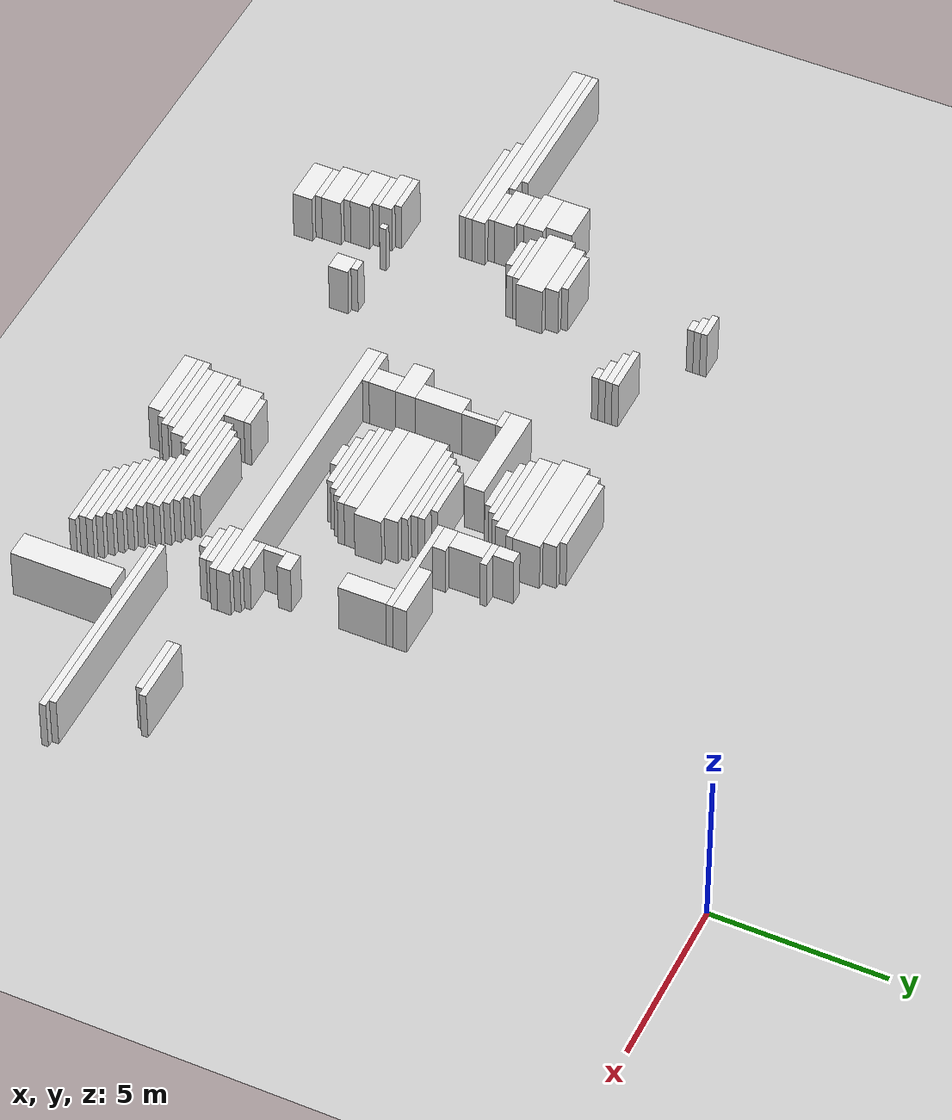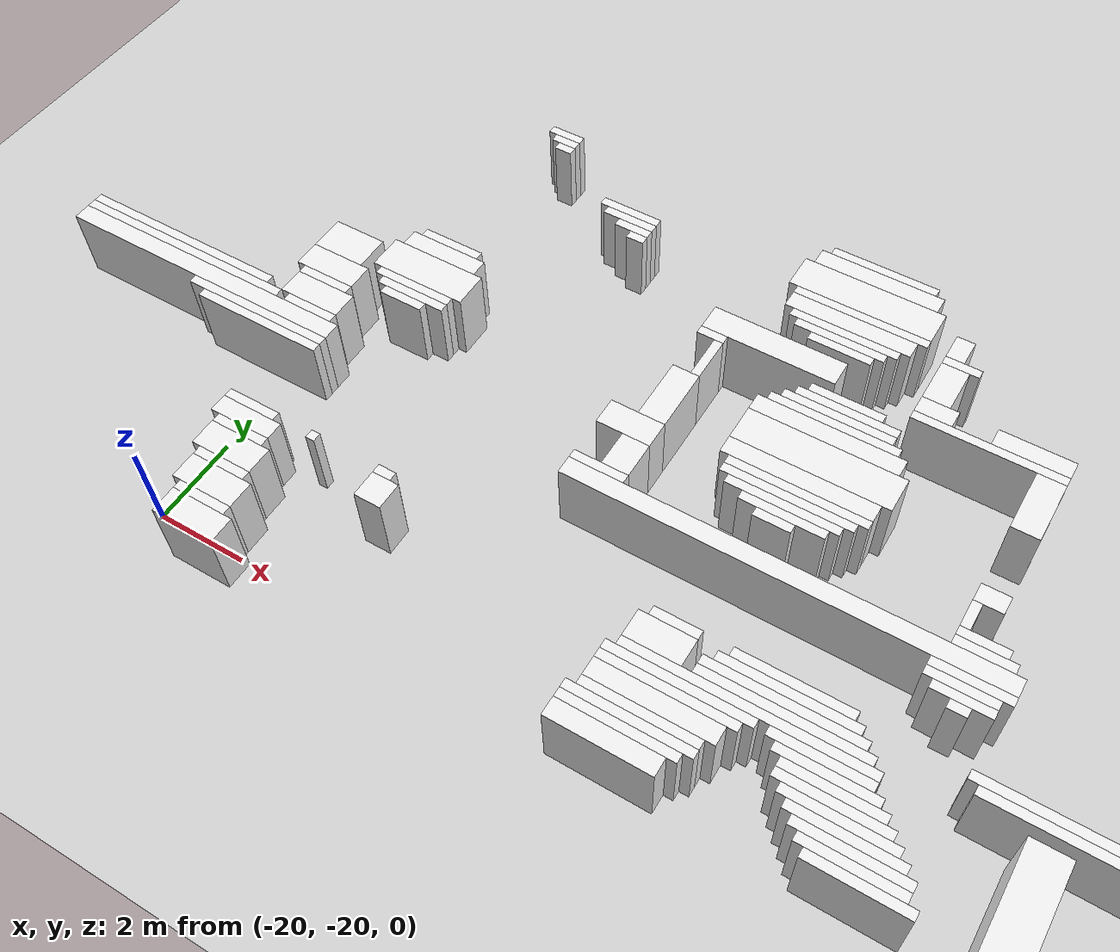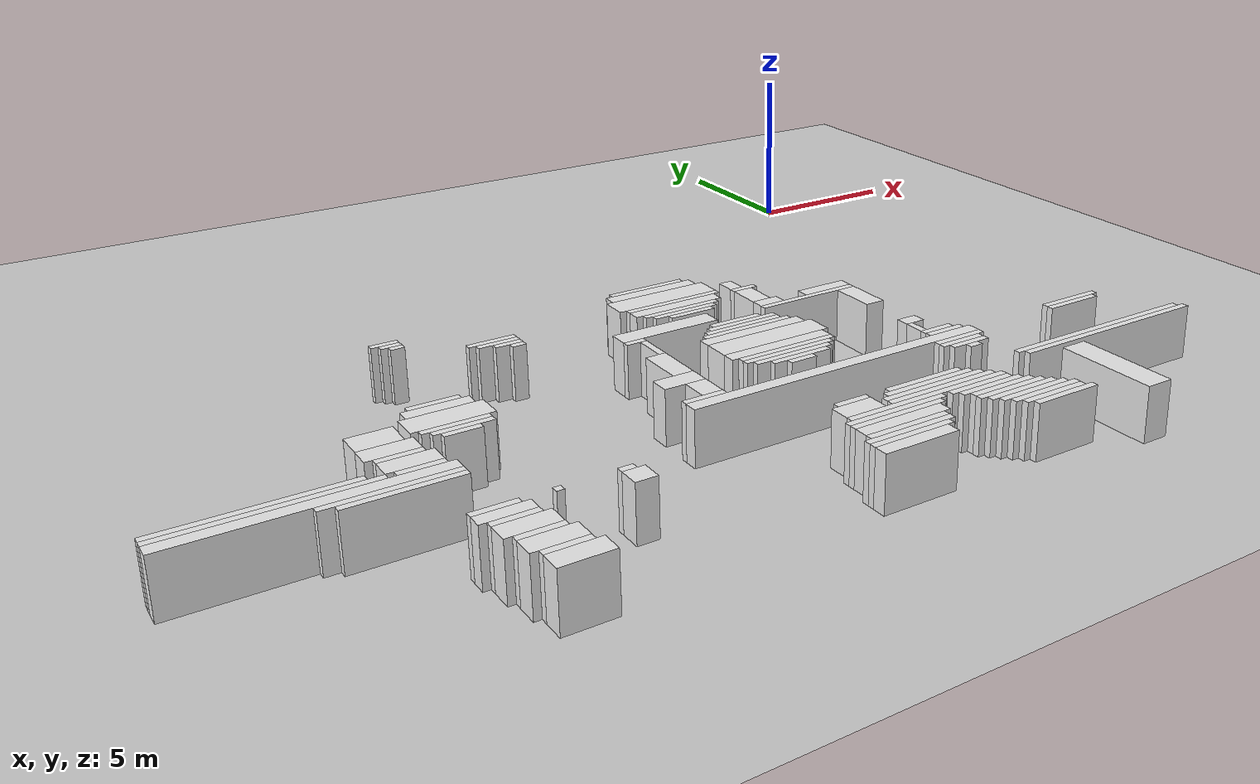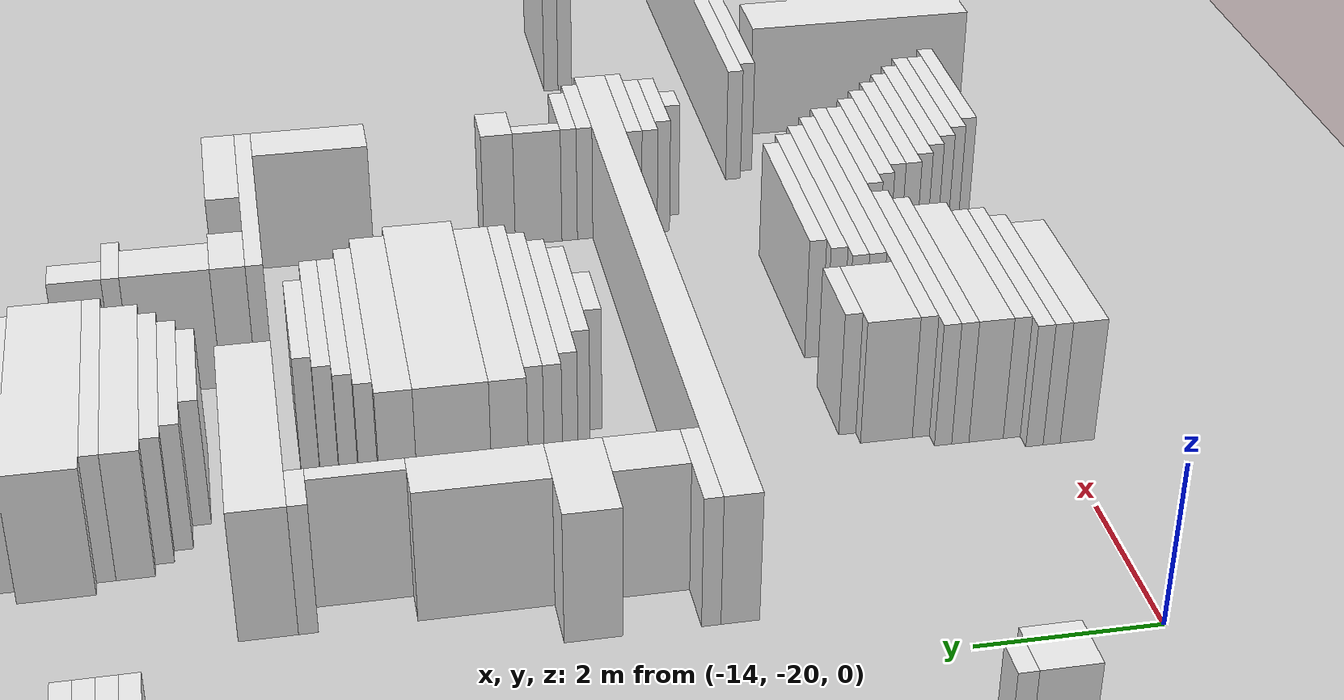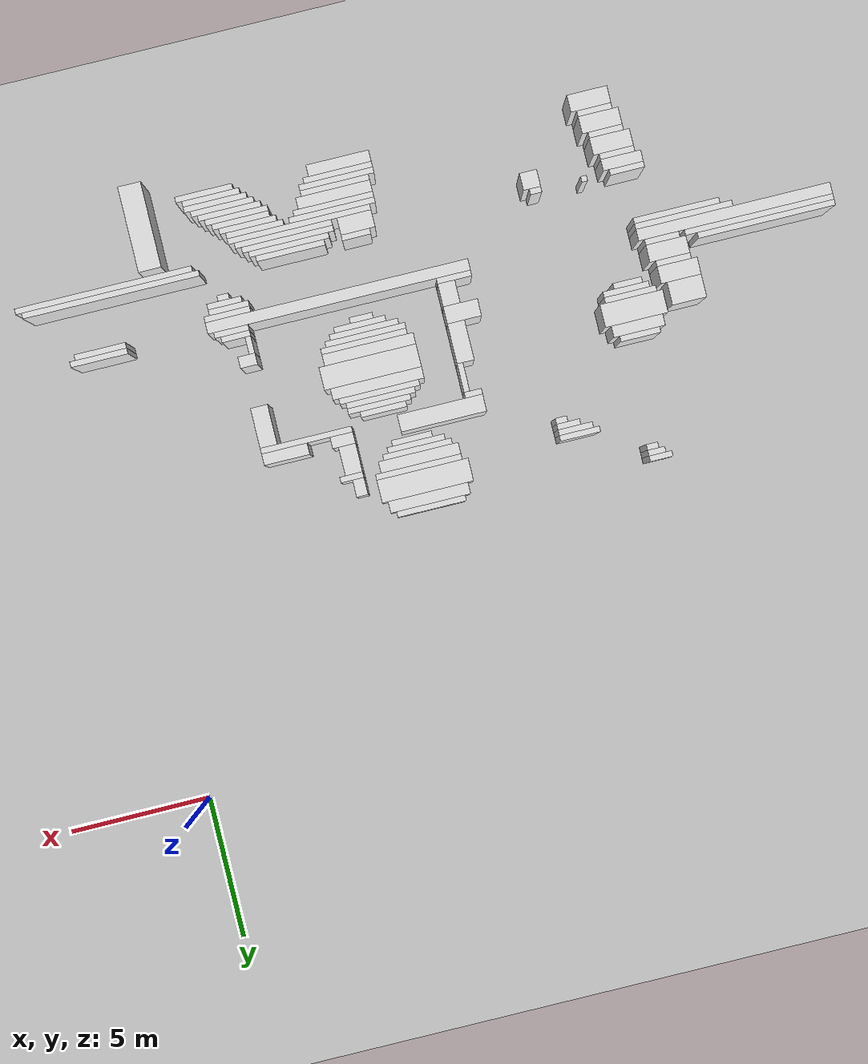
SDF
<sdf version="1.7">
 <world name="default">
  <model name="ground_plane">
   <static>1</static>
   <link name="link">
    <collision name="collision">
     <geometry><plane><normal>0 0 1</normal><size>120 120</size></plane></geometry>
    </collision>
    <visual name="visual">
     <geometry><plane><normal>0 0 1</normal><size>120 120</size></plane></geometry>
     <material>
      <script><uri>file://media/materials/scripts/gazebo.material</uri><name>Gazebo/Grey</name></script>
     </material>
    </visual>
   </link>
  </model>
  <model name="random_complex_02_model">
   <static>1</static>
   <link name="obs_2290">
    <pose>-18.0000 -7.9000 0.8000 0 0 0</pose>
    <collision name="obs_2290_col"><geometry><box><size>0.8000 0.2000 1.6000</size></box></geometry></collision>
    <visual name="obs_2290_vis">
     <geometry><box><size>0.8000 0.2000 1.6000</size></box></geometry>
     <material>
      <script><uri>file://media/materials/scripts/gazebo.material</uri><name>Gazebo/White</name></script>
     </material>
    </visual>
   </link>
   <link name="obs_2299">
    <pose>-17.9000 -8.1000 0.8000 0 0 0</pose>
    <collision name="obs_2299_col"><geometry><box><size>0.6000 0.2000 1.6000</size></box></geometry></collision>
    <visual name="obs_2299_vis">
     <geometry><box><size>0.6000 0.2000 1.6000</size></box></geometry>
     <material>
      <script><uri>file://media/materials/scripts/gazebo.material</uri><name>Gazebo/White</name></script>
     </material>
    </visual>
   </link>
   <link name="obs_2300">
    <pose>-10.0000 -8.1000 0.8000 0 0 0</pose>
    <collision name="obs_2300_col"><geometry><box><size>2.4000 0.2000 1.6000</size></box></geometry></collision>
    <visual name="obs_2300_vis">
     <geometry><box><size>2.4000 0.2000 1.6000</size></box></geometry>
     <material>
      <script><uri>file://media/materials/scripts/gazebo.material</uri><name>Gazebo/White</name></script>
     </material>
    </visual>
   </link>
   <link name="obs_2306">
    <pose>-17.8000 -8.3000 0.8000 0 0 0</pose>
    <collision name="obs_2306_col"><geometry><box><size>0.4000 0.2000 1.6000</size></box></geometry></collision>
    <visual name="obs_2306_vis">
     <geometry><box><size>0.4000 0.2000 1.6000</size></box></geometry>
     <material>
      <script><uri>file://media/materials/scripts/gazebo.material</uri><name>Gazebo/White</name></script>
     </material>
    </visual>
   </link>
   <link name="obs_2310">
    <pose>-10.0000 -8.4000 0.8000 0 0 0</pose>
    <collision name="obs_2310_col"><geometry><box><size>2.8000 0.4000 1.6000</size></box></geometry></collision>
    <visual name="obs_2310_vis">
     <geometry><box><size>2.8000 0.4000 1.6000</size></box></geometry>
     <material>
      <script><uri>file://media/materials/scripts/gazebo.material</uri><name>Gazebo/White</name></script>
     </material>
    </visual>
   </link>
   <link name="obs_2330">
    <pose>-10.0000 -9.0000 0.8000 0 0 0</pose>
    <collision name="obs_2330_col"><geometry><box><size>3.2000 0.8000 1.6000</size></box></geometry></collision>
    <visual name="obs_2330_vis">
     <geometry><box><size>3.2000 0.8000 1.6000</size></box></geometry>
     <material>
      <script><uri>file://media/materials/scripts/gazebo.material</uri><name>Gazebo/White</name></script>
     </material>
    </visual>
   </link>
   <link name="obs_2336">
    <pose>-15.5000 -9.3000 0.8000 0 0 0</pose>
    <collision name="obs_2336_col"><geometry><box><size>1.4000 0.2000 1.6000</size></box></geometry></collision>
    <visual name="obs_2336_vis">
     <geometry><box><size>1.4000 0.2000 1.6000</size></box></geometry>
     <material>
      <script><uri>file://media/materials/scripts/gazebo.material</uri><name>Gazebo/White</name></script>
     </material>
    </visual>
   </link>
   <link name="obs_2337">
    <pose>-7.8000 -9.3000 0.8000 0 0 0</pose>
    <collision name="obs_2337_col"><geometry><box><size>0.4000 0.6000 1.6000</size></box></geometry></collision>
    <visual name="obs_2337_vis">
     <geometry><box><size>0.4000 0.6000 1.6000</size></box></geometry>
     <material>
      <script><uri>file://media/materials/scripts/gazebo.material</uri><name>Gazebo/White</name></script>
     </material>
    </visual>
   </link>
   <link name="obs_2340">
    <pose>-15.4000 -9.5000 0.8000 0 0 0</pose>
    <collision name="obs_2340_col"><geometry><box><size>1.2000 0.2000 1.6000</size></box></geometry></collision>
    <visual name="obs_2340_vis">
     <geometry><box><size>1.2000 0.2000 1.6000</size></box></geometry>
     <material>
      <script><uri>file://media/materials/scripts/gazebo.material</uri><name>Gazebo/White</name></script>
     </material>
    </visual>
   </link>
   <link name="obs_2341">
    <pose>-9.9000 -9.5000 0.8000 0 0 0</pose>
    <collision name="obs_2341_col"><geometry><box><size>3.0000 0.2000 1.6000</size></box></geometry></collision>
    <visual name="obs_2341_vis">
     <geometry><box><size>3.0000 0.2000 1.6000</size></box></geometry>
     <material>
      <script><uri>file://media/materials/scripts/gazebo.material</uri><name>Gazebo/White</name></script>
     </material>
    </visual>
   </link>
   <link name="obs_2346">
    <pose>-15.2000 -9.7000 0.8000 0 0 0</pose>
    <collision name="obs_2346_col"><geometry><box><size>0.8000 0.2000 1.6000</size></box></geometry></collision>
    <visual name="obs_2346_vis">
     <geometry><box><size>0.8000 0.2000 1.6000</size></box></geometry>
     <material>
      <script><uri>file://media/materials/scripts/gazebo.material</uri><name>Gazebo/White</name></script>
     </material>
    </visual>
   </link>
   <link name="obs_2347">
    <pose>-7.6000 -9.7000 0.8000 0 0 0</pose>
    <collision name="obs_2347_col"><geometry><box><size>0.8000 0.2000 1.6000</size></box></geometry></collision>
    <visual name="obs_2347_vis">
     <geometry><box><size>0.8000 0.2000 1.6000</size></box></geometry>
     <material>
      <script><uri>file://media/materials/scripts/gazebo.material</uri><name>Gazebo/White</name></script>
     </material>
    </visual>
   </link>
   <link name="obs_2351">
    <pose>-10.0000 -9.8000 0.8000 0 0 0</pose>
    <collision name="obs_2351_col"><geometry><box><size>2.8000 0.4000 1.6000</size></box></geometry></collision>
    <visual name="obs_2351_vis">
     <geometry><box><size>2.8000 0.4000 1.6000</size></box></geometry>
     <material>
      <script><uri>file://media/materials/scripts/gazebo.material</uri><name>Gazebo/White</name></script>
     </material>
    </visual>
   </link>
   <link name="obs_2353">
    <pose>-15.0000 -9.9000 0.8000 0 0 0</pose>
    <collision name="obs_2353_col"><geometry><box><size>0.4000 0.2000 1.6000</size></box></geometry></collision>
    <visual name="obs_2353_vis">
     <geometry><box><size>0.4000 0.2000 1.6000</size></box></geometry>
     <material>
      <script><uri>file://media/materials/scripts/gazebo.material</uri><name>Gazebo/White</name></script>
     </material>
    </visual>
   </link>
   <link name="obs_2359">
    <pose>-10.0000 -10.1000 0.8000 0 0 0</pose>
    <collision name="obs_2359_col"><geometry><box><size>2.4000 0.2000 1.6000</size></box></geometry></collision>
    <visual name="obs_2359_vis">
     <geometry><box><size>2.4000 0.2000 1.6000</size></box></geometry>
     <material>
      <script><uri>file://media/materials/scripts/gazebo.material</uri><name>Gazebo/White</name></script>
     </material>
    </visual>
   </link>
   <link name="obs_2365">
    <pose>-10.0000 -10.3000 0.8000 0 0 0</pose>
    <collision name="obs_2365_col"><geometry><box><size>2.0000 0.2000 1.6000</size></box></geometry></collision>
    <visual name="obs_2365_vis">
     <geometry><box><size>2.0000 0.2000 1.6000</size></box></geometry>
     <material>
      <script><uri>file://media/materials/scripts/gazebo.material</uri><name>Gazebo/White</name></script>
     </material>
    </visual>
   </link>
   <link name="obs_2372">
    <pose>-9.9000 -10.5000 0.8000 0 0 0</pose>
    <collision name="obs_2372_col"><geometry><box><size>1.4000 0.2000 1.6000</size></box></geometry></collision>
    <visual name="obs_2372_vis">
     <geometry><box><size>1.4000 0.2000 1.6000</size></box></geometry>
     <material>
      <script><uri>file://media/materials/scripts/gazebo.material</uri><name>Gazebo/White</name></script>
     </material>
    </visual>
   </link>
   <link name="obs_2377">
    <pose>-7.7000 -10.3000 0.8000 0 0 0</pose>
    <collision name="obs_2377_col"><geometry><box><size>0.6000 1.0000 1.6000</size></box></geometry></collision>
    <visual name="obs_2377_vis">
     <geometry><box><size>0.6000 1.0000 1.6000</size></box></geometry>
     <material>
      <script><uri>file://media/materials/scripts/gazebo.material</uri><name>Gazebo/White</name></script>
     </material>
    </visual>
   </link>
   <link name="obs_2387">
    <pose>-7.6000 -11.0000 0.8000 0 0 0</pose>
    <collision name="obs_2387_col"><geometry><box><size>0.8000 0.4000 1.6000</size></box></geometry></collision>
    <visual name="obs_2387_vis">
     <geometry><box><size>0.8000 0.4000 1.6000</size></box></geometry>
     <material>
      <script><uri>file://media/materials/scripts/gazebo.material</uri><name>Gazebo/White</name></script>
     </material>
    </visual>
   </link>
   <link name="obs_2388">
    <pose>-5.6000 -11.0000 0.8000 0 0 0</pose>
    <collision name="obs_2388_col"><geometry><box><size>1.6000 0.4000 1.6000</size></box></geometry></collision>
    <visual name="obs_2388_vis">
     <geometry><box><size>1.6000 0.4000 1.6000</size></box></geometry>
     <material>
      <script><uri>file://media/materials/scripts/gazebo.material</uri><name>Gazebo/White</name></script>
     </material>
    </visual>
   </link>
   <link name="obs_2392">
    <pose>-11.1000 -11.1000 0.8000 0 0 0</pose>
    <collision name="obs_2392_col"><geometry><box><size>3.0000 0.6000 1.6000</size></box></geometry></collision>
    <visual name="obs_2392_vis">
     <geometry><box><size>3.0000 0.6000 1.6000</size></box></geometry>
     <material>
      <script><uri>file://media/materials/scripts/gazebo.material</uri><name>Gazebo/White</name></script>
     </material>
    </visual>
   </link>
   <link name="obs_2395">
    <pose>-6.4000 -11.3000 0.8000 0 0 0</pose>
    <collision name="obs_2395_col"><geometry><box><size>3.2000 0.2000 1.6000</size></box></geometry></collision>
    <visual name="obs_2395_vis">
     <geometry><box><size>3.2000 0.2000 1.6000</size></box></geometry>
     <material>
      <script><uri>file://media/materials/scripts/gazebo.material</uri><name>Gazebo/White</name></script>
     </material>
    </visual>
   </link>
   <link name="obs_2402">
    <pose>-12.3000 -11.5000 0.8000 0 0 0</pose>
    <collision name="obs_2402_col"><geometry><box><size>0.6000 0.2000 1.6000</size></box></geometry></collision>
    <visual name="obs_2402_vis">
     <geometry><box><size>0.6000 0.2000 1.6000</size></box></geometry>
     <material>
      <script><uri>file://media/materials/scripts/gazebo.material</uri><name>Gazebo/White</name></script>
     </material>
    </visual>
   </link>
   <link name="obs_2409">
    <pose>-9.2000 -11.7000 0.8000 0 0 0</pose>
    <collision name="obs_2409_col"><geometry><box><size>1.6000 0.2000 1.6000</size></box></geometry></collision>
    <visual name="obs_2409_vis">
     <geometry><box><size>1.6000 0.2000 1.6000</size></box></geometry>
     <material>
      <script><uri>file://media/materials/scripts/gazebo.material</uri><name>Gazebo/White</name></script>
     </material>
    </visual>
   </link>
   <link name="obs_2417">
    <pose>-9.1000 -11.9000 0.8000 0 0 0</pose>
    <collision name="obs_2417_col"><geometry><box><size>2.2000 0.2000 1.6000</size></box></geometry></collision>
    <visual name="obs_2417_vis">
     <geometry><box><size>2.2000 0.2000 1.6000</size></box></geometry>
     <material>
      <script><uri>file://media/materials/scripts/gazebo.material</uri><name>Gazebo/White</name></script>
     </material>
    </visual>
   </link>
   <link name="obs_2425">
    <pose>-18.3000 -12.1000 0.8000 0 0 0</pose>
    <collision name="obs_2425_col"><geometry><box><size>1.4000 0.2000 1.6000</size></box></geometry></collision>
    <visual name="obs_2425_vis">
     <geometry><box><size>1.4000 0.2000 1.6000</size></box></geometry>
     <material>
      <script><uri>file://media/materials/scripts/gazebo.material</uri><name>Gazebo/White</name></script>
     </material>
    </visual>
   </link>
   <link name="obs_2426">
    <pose>-9.2000 -12.1000 0.8000 0 0 0</pose>
    <collision name="obs_2426_col"><geometry><box><size>2.4000 0.2000 1.6000</size></box></geometry></collision>
    <visual name="obs_2426_vis">
     <geometry><box><size>2.4000 0.2000 1.6000</size></box></geometry>
     <material>
      <script><uri>file://media/materials/scripts/gazebo.material</uri><name>Gazebo/White</name></script>
     </material>
    </visual>
   </link>
   <link name="obs_2434">
    <pose>-9.2000 -12.3000 0.8000 0 0 0</pose>
    <collision name="obs_2434_col"><geometry><box><size>2.8000 0.2000 1.6000</size></box></geometry></collision>
    <visual name="obs_2434_vis">
     <geometry><box><size>2.8000 0.2000 1.6000</size></box></geometry>
     <material>
      <script><uri>file://media/materials/scripts/gazebo.material</uri><name>Gazebo/White</name></script>
     </material>
    </visual>
   </link>
   <link name="obs_2440">
    <pose>-12.1000 -12.1000 0.8000 0 0 0</pose>
    <collision name="obs_2440_col"><geometry><box><size>0.2000 1.0000 1.6000</size></box></geometry></collision>
    <visual name="obs_2440_vis">
     <geometry><box><size>0.2000 1.0000 1.6000</size></box></geometry>
     <material>
      <script><uri>file://media/materials/scripts/gazebo.material</uri><name>Gazebo/White</name></script>
     </material>
    </visual>
   </link>
   <link name="obs_2441">
    <pose>-18.3000 -12.4000 0.8000 0 0 0</pose>
    <collision name="obs_2441_col"><geometry><box><size>1.8000 0.4000 1.6000</size></box></geometry></collision>
    <visual name="obs_2441_vis">
     <geometry><box><size>1.8000 0.4000 1.6000</size></box></geometry>
     <material>
      <script><uri>file://media/materials/scripts/gazebo.material</uri><name>Gazebo/White</name></script>
     </material>
    </visual>
   </link>
   <link name="obs_2449">
    <pose>-5.1000 -12.1000 0.8000 0 0 0</pose>
    <collision name="obs_2449_col"><geometry><box><size>0.6000 1.4000 1.6000</size></box></geometry></collision>
    <visual name="obs_2449_vis">
     <geometry><box><size>0.6000 1.4000 1.6000</size></box></geometry>
     <material>
      <script><uri>file://media/materials/scripts/gazebo.material</uri><name>Gazebo/White</name></script>
     </material>
    </visual>
   </link>
   <link name="obs_2452">
    <pose>-9.2000 -12.6000 0.8000 0 0 0</pose>
    <collision name="obs_2452_col"><geometry><box><size>3.2000 0.4000 1.6000</size></box></geometry></collision>
    <visual name="obs_2452_vis">
     <geometry><box><size>3.2000 0.4000 1.6000</size></box></geometry>
     <material>
      <script><uri>file://media/materials/scripts/gazebo.material</uri><name>Gazebo/White</name></script>
     </material>
    </visual>
   </link>
   <link name="obs_2471">
    <pose>-18.3000 -13.0000 0.8000 0 0 0</pose>
    <collision name="obs_2471_col"><geometry><box><size>2.2000 0.8000 1.6000</size></box></geometry></collision>
    <visual name="obs_2471_vis">
     <geometry><box><size>2.2000 0.8000 1.6000</size></box></geometry>
     <material>
      <script><uri>file://media/materials/scripts/gazebo.material</uri><name>Gazebo/White</name></script>
     </material>
    </visual>
   </link>
   <link name="obs_2477">
    <pose>-20.2000 -13.2000 0.8000 0 0 0</pose>
    <collision name="obs_2477_col"><geometry><box><size>1.2000 0.8000 1.6000</size></box></geometry></collision>
    <visual name="obs_2477_vis">
     <geometry><box><size>1.2000 0.8000 1.6000</size></box></geometry>
     <material>
      <script><uri>file://media/materials/scripts/gazebo.material</uri><name>Gazebo/White</name></script>
     </material>
    </visual>
   </link>
   <link name="obs_2478">
    <pose>-9.1000 -13.2000 0.8000 0 0 0</pose>
    <collision name="obs_2478_col"><geometry><box><size>3.4000 0.8000 1.6000</size></box></geometry></collision>
    <visual name="obs_2478_vis">
     <geometry><box><size>3.4000 0.8000 1.6000</size></box></geometry>
     <material>
      <script><uri>file://media/materials/scripts/gazebo.material</uri><name>Gazebo/White</name></script>
     </material>
    </visual>
   </link>
   <link name="obs_2482">
    <pose>-18.3000 -13.5000 0.8000 0 0 0</pose>
    <collision name="obs_2482_col"><geometry><box><size>1.8000 0.2000 1.6000</size></box></geometry></collision>
    <visual name="obs_2482_vis">
     <geometry><box><size>1.8000 0.2000 1.6000</size></box></geometry>
     <material>
      <script><uri>file://media/materials/scripts/gazebo.material</uri><name>Gazebo/White</name></script>
     </material>
    </visual>
   </link>
   <link name="obs_2489">
    <pose>-18.2000 -13.7000 0.8000 0 0 0</pose>
    <collision name="obs_2489_col"><geometry><box><size>1.6000 0.2000 1.6000</size></box></geometry></collision>
    <visual name="obs_2489_vis">
     <geometry><box><size>1.6000 0.2000 1.6000</size></box></geometry>
     <material>
      <script><uri>file://media/materials/scripts/gazebo.material</uri><name>Gazebo/White</name></script>
     </material>
    </visual>
   </link>
   <link name="obs_2492">
    <pose>-12.3000 -13.3000 0.8000 0 0 0</pose>
    <collision name="obs_2492_col"><geometry><box><size>0.6000 1.4000 1.6000</size></box></geometry></collision>
    <visual name="obs_2492_vis">
     <geometry><box><size>0.6000 1.4000 1.6000</size></box></geometry>
     <material>
      <script><uri>file://media/materials/scripts/gazebo.material</uri><name>Gazebo/White</name></script>
     </material>
    </visual>
   </link>
   <link name="obs_2493">
    <pose>-9.2000 -13.8000 0.8000 0 0 0</pose>
    <collision name="obs_2493_col"><geometry><box><size>3.2000 0.4000 1.6000</size></box></geometry></collision>
    <visual name="obs_2493_vis">
     <geometry><box><size>3.2000 0.4000 1.6000</size></box></geometry>
     <material>
      <script><uri>file://media/materials/scripts/gazebo.material</uri><name>Gazebo/White</name></script>
     </material>
    </visual>
   </link>
   <link name="obs_2497">
    <pose>-18.3000 -13.9000 0.8000 0 0 0</pose>
    <collision name="obs_2497_col"><geometry><box><size>1.0000 0.2000 1.6000</size></box></geometry></collision>
    <visual name="obs_2497_vis">
     <geometry><box><size>1.0000 0.2000 1.6000</size></box></geometry>
     <material>
      <script><uri>file://media/materials/scripts/gazebo.material</uri><name>Gazebo/White</name></script>
     </material>
    </visual>
   </link>
   <link name="obs_2501">
    <pose>-20.1000 -13.9000 0.8000 0 0 0</pose>
    <collision name="obs_2501_col"><geometry><box><size>1.4000 0.6000 1.6000</size></box></geometry></collision>
    <visual name="obs_2501_vis">
     <geometry><box><size>1.4000 0.6000 1.6000</size></box></geometry>
     <material>
      <script><uri>file://media/materials/scripts/gazebo.material</uri><name>Gazebo/White</name></script>
     </material>
    </visual>
   </link>
   <link name="obs_2505">
    <pose>-9.1000 -14.1000 0.8000 0 0 0</pose>
    <collision name="obs_2505_col"><geometry><box><size>3.0000 0.2000 1.6000</size></box></geometry></collision>
    <visual name="obs_2505_vis">
     <geometry><box><size>3.0000 0.2000 1.6000</size></box></geometry>
     <material>
      <script><uri>file://media/materials/scripts/gazebo.material</uri><name>Gazebo/White</name></script>
     </material>
    </visual>
   </link>
   <link name="obs_2513">
    <pose>-20.0000 -14.3000 0.8000 0 0 0</pose>
    <collision name="obs_2513_col"><geometry><box><size>1.2000 0.2000 1.6000</size></box></geometry></collision>
    <visual name="obs_2513_vis">
     <geometry><box><size>1.2000 0.2000 1.6000</size></box></geometry>
     <material>
      <script><uri>file://media/materials/scripts/gazebo.material</uri><name>Gazebo/White</name></script>
     </material>
    </visual>
   </link>
   <link name="obs_2514">
    <pose>-9.2000 -14.3000 0.8000 0 0 0</pose>
    <collision name="obs_2514_col"><geometry><box><size>2.8000 0.2000 1.6000</size></box></geometry></collision>
    <visual name="obs_2514_vis">
     <geometry><box><size>2.8000 0.2000 1.6000</size></box></geometry>
     <material>
      <script><uri>file://media/materials/scripts/gazebo.material</uri><name>Gazebo/White</name></script>
     </material>
    </visual>
   </link>
   <link name="obs_2520">
    <pose>-12.6000 -14.3000 0.8000 0 0 0</pose>
    <collision name="obs_2520_col"><geometry><box><size>1.2000 0.6000 1.6000</size></box></geometry></collision>
    <visual name="obs_2520_vis">
     <geometry><box><size>1.2000 0.6000 1.6000</size></box></geometry>
     <material>
      <script><uri>file://media/materials/scripts/gazebo.material</uri><name>Gazebo/White</name></script>
     </material>
    </visual>
   </link>
   <link name="obs_2521">
    <pose>-5.1000 -14.4000 0.8000 0 0 0</pose>
    <collision name="obs_2521_col"><geometry><box><size>0.6000 0.4000 1.6000</size></box></geometry></collision>
    <visual name="obs_2521_vis">
     <geometry><box><size>0.6000 0.4000 1.6000</size></box></geometry>
     <material>
      <script><uri>file://media/materials/scripts/gazebo.material</uri><name>Gazebo/White</name></script>
     </material>
    </visual>
   </link>
   <link name="obs_2525">
    <pose>-9.2000 -14.5000 0.8000 0 0 0</pose>
    <collision name="obs_2525_col"><geometry><box><size>2.4000 0.2000 1.6000</size></box></geometry></collision>
    <visual name="obs_2525_vis">
     <geometry><box><size>2.4000 0.2000 1.6000</size></box></geometry>
     <material>
      <script><uri>file://media/materials/scripts/gazebo.material</uri><name>Gazebo/White</name></script>
     </material>
    </visual>
   </link>
   <link name="obs_2533">
    <pose>-9.1000 -14.7000 0.8000 0 0 0</pose>
    <collision name="obs_2533_col"><geometry><box><size>1.8000 0.2000 1.6000</size></box></geometry></collision>
    <visual name="obs_2533_vis">
     <geometry><box><size>1.8000 0.2000 1.6000</size></box></geometry>
     <material>
      <script><uri>file://media/materials/scripts/gazebo.material</uri><name>Gazebo/White</name></script>
     </material>
    </visual>
   </link>
   <link name="obs_2540">
    <pose>-19.9000 -14.7000 0.8000 0 0 0</pose>
    <collision name="obs_2540_col"><geometry><box><size>1.4000 0.6000 1.6000</size></box></geometry></collision>
    <visual name="obs_2540_vis">
     <geometry><box><size>1.4000 0.6000 1.6000</size></box></geometry>
     <material>
      <script><uri>file://media/materials/scripts/gazebo.material</uri><name>Gazebo/White</name></script>
     </material>
    </visual>
   </link>
   <link name="obs_2543">
    <pose>-23.4000 -14.9000 0.8000 0 0 0</pose>
    <collision name="obs_2543_col"><geometry><box><size>4.8000 0.2000 1.6000</size></box></geometry></collision>
    <visual name="obs_2543_vis">
     <geometry><box><size>4.8000 0.2000 1.6000</size></box></geometry>
     <material>
      <script><uri>file://media/materials/scripts/gazebo.material</uri><name>Gazebo/White</name></script>
     </material>
    </visual>
   </link>
   <link name="obs_2544">
    <pose>-9.2000 -14.9000 0.8000 0 0 0</pose>
    <collision name="obs_2544_col"><geometry><box><size>0.8000 0.2000 1.6000</size></box></geometry></collision>
    <visual name="obs_2544_vis">
     <geometry><box><size>0.8000 0.2000 1.6000</size></box></geometry>
     <material>
      <script><uri>file://media/materials/scripts/gazebo.material</uri><name>Gazebo/White</name></script>
     </material>
    </visual>
   </link>
   <link name="obs_2550">
    <pose>-5.3000 -14.9000 0.8000 0 0 0</pose>
    <collision name="obs_2550_col"><geometry><box><size>0.2000 0.6000 1.6000</size></box></geometry></collision>
    <visual name="obs_2550_vis">
     <geometry><box><size>0.2000 0.6000 1.6000</size></box></geometry>
     <material>
      <script><uri>file://media/materials/scripts/gazebo.material</uri><name>Gazebo/White</name></script>
     </material>
    </visual>
   </link>
   <link name="obs_2553">
    <pose>-23.2000 -15.1000 0.8000 0 0 0</pose>
    <collision name="obs_2553_col"><geometry><box><size>5.2000 0.2000 1.6000</size></box></geometry></collision>
    <visual name="obs_2553_vis">
     <geometry><box><size>5.2000 0.2000 1.6000</size></box></geometry>
     <material>
      <script><uri>file://media/materials/scripts/gazebo.material</uri><name>Gazebo/White</name></script>
     </material>
    </visual>
   </link>
   <link name="obs_2554">
    <pose>-19.8000 -15.1000 0.8000 0 0 0</pose>
    <collision name="obs_2554_col"><geometry><box><size>1.2000 0.2000 1.6000</size></box></geometry></collision>
    <visual name="obs_2554_vis">
     <geometry><box><size>1.2000 0.2000 1.6000</size></box></geometry>
     <material>
      <script><uri>file://media/materials/scripts/gazebo.material</uri><name>Gazebo/White</name></script>
     </material>
    </visual>
   </link>
   <link name="obs_2560">
    <pose>-12.3000 -15.0000 0.8000 0 0 0</pose>
    <collision name="obs_2560_col"><geometry><box><size>0.6000 0.8000 1.6000</size></box></geometry></collision>
    <visual name="obs_2560_vis">
     <geometry><box><size>0.6000 0.8000 1.6000</size></box></geometry>
     <material>
      <script><uri>file://media/materials/scripts/gazebo.material</uri><name>Gazebo/White</name></script>
     </material>
    </visual>
   </link>
   <link name="obs_2564">
    <pose>-4.9000 -15.3000 0.8000 0 0 0</pose>
    <collision name="obs_2564_col"><geometry><box><size>1.0000 0.2000 1.6000</size></box></geometry></collision>
    <visual name="obs_2564_vis">
     <geometry><box><size>1.0000 0.2000 1.6000</size></box></geometry>
     <material>
      <script><uri>file://media/materials/scripts/gazebo.material</uri><name>Gazebo/White</name></script>
     </material>
    </visual>
   </link>
   <link name="obs_2570">
    <pose>-22.4000 -15.4000 0.8000 0 0 0</pose>
    <collision name="obs_2570_col"><geometry><box><size>6.8000 0.4000 1.6000</size></box></geometry></collision>
    <visual name="obs_2570_vis">
     <geometry><box><size>6.8000 0.4000 1.6000</size></box></geometry>
     <material>
      <script><uri>file://media/materials/scripts/gazebo.material</uri><name>Gazebo/White</name></script>
     </material>
    </visual>
   </link>
   <link name="obs_2574">
    <pose>-12.6000 -15.5000 0.8000 0 0 0</pose>
    <collision name="obs_2574_col"><geometry><box><size>1.2000 0.2000 1.6000</size></box></geometry></collision>
    <visual name="obs_2574_vis">
     <geometry><box><size>1.2000 0.2000 1.6000</size></box></geometry>
     <material>
      <script><uri>file://media/materials/scripts/gazebo.material</uri><name>Gazebo/White</name></script>
     </material>
    </visual>
   </link>
   <link name="obs_2575">
    <pose>-4.8000 -15.5000 0.8000 0 0 0</pose>
    <collision name="obs_2575_col"><geometry><box><size>1.2000 0.2000 1.6000</size></box></geometry></collision>
    <visual name="obs_2575_vis">
     <geometry><box><size>1.2000 0.2000 1.6000</size></box></geometry>
     <material>
      <script><uri>file://media/materials/scripts/gazebo.material</uri><name>Gazebo/White</name></script>
     </material>
    </visual>
   </link>
   <link name="obs_2587">
    <pose>-20.7000 -15.7000 0.8000 0 0 0</pose>
    <collision name="obs_2587_col"><geometry><box><size>3.4000 0.2000 1.6000</size></box></geometry></collision>
    <visual name="obs_2587_vis">
     <geometry><box><size>3.4000 0.2000 1.6000</size></box></geometry>
     <material>
      <script><uri>file://media/materials/scripts/gazebo.material</uri><name>Gazebo/White</name></script>
     </material>
    </visual>
   </link>
   <link name="obs_2588">
    <pose>-0.2000 -15.7000 0.8000 0 0 0</pose>
    <collision name="obs_2588_col"><geometry><box><size>2.0000 0.2000 1.6000</size></box></geometry></collision>
    <visual name="obs_2588_vis">
     <geometry><box><size>2.0000 0.2000 1.6000</size></box></geometry>
     <material>
      <script><uri>file://media/materials/scripts/gazebo.material</uri><name>Gazebo/White</name></script>
     </material>
    </visual>
   </link>
   <link name="obs_2595">
    <pose>-8.6000 -15.8000 0.8000 0 0 0</pose>
    <collision name="obs_2595_col"><geometry><box><size>9.2000 0.4000 1.6000</size></box></geometry></collision>
    <visual name="obs_2595_vis">
     <geometry><box><size>9.2000 0.4000 1.6000</size></box></geometry>
     <material>
      <script><uri>file://media/materials/scripts/gazebo.material</uri><name>Gazebo/White</name></script>
     </material>
    </visual>
   </link>
   <link name="obs_2600">
    <pose>-20.5000 -15.9000 0.8000 0 0 0</pose>
    <collision name="obs_2600_col"><geometry><box><size>3.0000 0.2000 1.6000</size></box></geometry></collision>
    <visual name="obs_2600_vis">
     <geometry><box><size>3.0000 0.2000 1.6000</size></box></geometry>
     <material>
      <script><uri>file://media/materials/scripts/gazebo.material</uri><name>Gazebo/White</name></script>
     </material>
    </visual>
   </link>
   <link name="obs_2601">
    <pose>-0.3000 -15.9000 0.8000 0 0 0</pose>
    <collision name="obs_2601_col"><geometry><box><size>1.8000 0.2000 1.6000</size></box></geometry></collision>
    <visual name="obs_2601_vis">
     <geometry><box><size>1.8000 0.2000 1.6000</size></box></geometry>
     <material>
      <script><uri>file://media/materials/scripts/gazebo.material</uri><name>Gazebo/White</name></script>
     </material>
    </visual>
   </link>
   <link name="obs_2610">
    <pose>-4.8000 -16.1000 0.8000 0 0 0</pose>
    <collision name="obs_2610_col"><geometry><box><size>1.6000 0.2000 1.6000</size></box></geometry></collision>
    <visual name="obs_2610_vis">
     <geometry><box><size>1.6000 0.2000 1.6000</size></box></geometry>
     <material>
      <script><uri>file://media/materials/scripts/gazebo.material</uri><name>Gazebo/White</name></script>
     </material>
    </visual>
   </link>
   <link name="obs_2616">
    <pose>-4.9000 -16.3000 0.8000 0 0 0</pose>
    <collision name="obs_2616_col"><geometry><box><size>1.4000 0.2000 1.6000</size></box></geometry></collision>
    <visual name="obs_2616_vis">
     <geometry><box><size>1.4000 0.2000 1.6000</size></box></geometry>
     <material>
      <script><uri>file://media/materials/scripts/gazebo.material</uri><name>Gazebo/White</name></script>
     </material>
    </visual>
   </link>
   <link name="obs_2623">
    <pose>-4.8000 -16.5000 0.8000 0 0 0</pose>
    <collision name="obs_2623_col"><geometry><box><size>1.2000 0.2000 1.6000</size></box></geometry></collision>
    <visual name="obs_2623_vis">
     <geometry><box><size>1.2000 0.2000 1.6000</size></box></geometry>
     <material>
      <script><uri>file://media/materials/scripts/gazebo.material</uri><name>Gazebo/White</name></script>
     </material>
    </visual>
   </link>
   <link name="obs_2631">
    <pose>-4.8000 -16.7000 0.8000 0 0 0</pose>
    <collision name="obs_2631_col"><geometry><box><size>0.4000 0.2000 1.6000</size></box></geometry></collision>
    <visual name="obs_2631_vis">
     <geometry><box><size>0.4000 0.2000 1.6000</size></box></geometry>
     <material>
      <script><uri>file://media/materials/scripts/gazebo.material</uri><name>Gazebo/White</name></script>
     </material>
    </visual>
   </link>
   <link name="obs_2665">
    <pose>-19.2000 -17.7000 0.8000 0 0 0</pose>
    <collision name="obs_2665_col"><geometry><box><size>1.2000 0.2000 1.6000</size></box></geometry></collision>
    <visual name="obs_2665_vis">
     <geometry><box><size>1.2000 0.2000 1.6000</size></box></geometry>
     <material>
      <script><uri>file://media/materials/scripts/gazebo.material</uri><name>Gazebo/White</name></script>
     </material>
    </visual>
   </link>
   <link name="obs_2666">
    <pose>-17.7000 -17.7000 0.8000 0 0 0</pose>
    <collision name="obs_2666_col"><geometry><box><size>0.2000 0.2000 1.6000</size></box></geometry></collision>
    <visual name="obs_2666_vis">
     <geometry><box><size>0.2000 0.2000 1.6000</size></box></geometry>
     <material>
      <script><uri>file://media/materials/scripts/gazebo.material</uri><name>Gazebo/White</name></script>
     </material>
    </visual>
   </link>
   <link name="obs_2667">
    <pose>-16.0000 -17.7000 0.8000 0 0 0</pose>
    <collision name="obs_2667_col"><geometry><box><size>0.4000 0.2000 1.6000</size></box></geometry></collision>
    <visual name="obs_2667_vis">
     <geometry><box><size>0.4000 0.2000 1.6000</size></box></geometry>
     <material>
      <script><uri>file://media/materials/scripts/gazebo.material</uri><name>Gazebo/White</name></script>
     </material>
    </visual>
   </link>
   <link name="obs_2668">
    <pose>-9.7000 -17.7000 0.8000 0 0 0</pose>
    <collision name="obs_2668_col"><geometry><box><size>1.0000 0.2000 1.6000</size></box></geometry></collision>
    <visual name="obs_2668_vis">
     <geometry><box><size>1.0000 0.2000 1.6000</size></box></geometry>
     <material>
      <script><uri>file://media/materials/scripts/gazebo.material</uri><name>Gazebo/White</name></script>
     </material>
    </visual>
   </link>
   <link name="obs_2669">
    <pose>-7.4000 -17.7000 0.8000 0 0 0</pose>
    <collision name="obs_2669_col"><geometry><box><size>2.4000 0.2000 1.6000</size></box></geometry></collision>
    <visual name="obs_2669_vis">
     <geometry><box><size>2.4000 0.2000 1.6000</size></box></geometry>
     <material>
      <script><uri>file://media/materials/scripts/gazebo.material</uri><name>Gazebo/White</name></script>
     </material>
    </visual>
   </link>
   <link name="obs_2670">
    <pose>-1.1000 -17.7000 0.8000 0 0 0</pose>
    <collision name="obs_2670_col"><geometry><box><size>6.2000 0.2000 1.6000</size></box></geometry></collision>
    <visual name="obs_2670_vis">
     <geometry><box><size>6.2000 0.2000 1.6000</size></box></geometry>
     <material>
      <script><uri>file://media/materials/scripts/gazebo.material</uri><name>Gazebo/White</name></script>
     </material>
    </visual>
   </link>
   <link name="obs_2678">
    <pose>-7.4000 -17.9000 0.8000 0 0 0</pose>
    <collision name="obs_2678_col"><geometry><box><size>2.8000 0.2000 1.6000</size></box></geometry></collision>
    <visual name="obs_2678_vis">
     <geometry><box><size>2.8000 0.2000 1.6000</size></box></geometry>
     <material>
      <script><uri>file://media/materials/scripts/gazebo.material</uri><name>Gazebo/White</name></script>
     </material>
    </visual>
   </link>
   <link name="obs_2679">
    <pose>-0.9000 -17.9000 0.8000 0 0 0</pose>
    <collision name="obs_2679_col"><geometry><box><size>6.2000 0.2000 1.6000</size></box></geometry></collision>
    <visual name="obs_2679_vis">
     <geometry><box><size>6.2000 0.2000 1.6000</size></box></geometry>
     <material>
      <script><uri>file://media/materials/scripts/gazebo.material</uri><name>Gazebo/White</name></script>
     </material>
    </visual>
   </link>
   <link name="obs_2684">
    <pose>-19.1000 -18.0000 0.8000 0 0 0</pose>
    <collision name="obs_2684_col"><geometry><box><size>1.4000 0.4000 1.6000</size></box></geometry></collision>
    <visual name="obs_2684_vis">
     <geometry><box><size>1.4000 0.4000 1.6000</size></box></geometry>
     <material>
      <script><uri>file://media/materials/scripts/gazebo.material</uri><name>Gazebo/White</name></script>
     </material>
    </visual>
   </link>
   <link name="obs_2687">
    <pose>-7.4000 -18.1000 0.8000 0 0 0</pose>
    <collision name="obs_2687_col"><geometry><box><size>3.2000 0.2000 1.6000</size></box></geometry></collision>
    <visual name="obs_2687_vis">
     <geometry><box><size>3.2000 0.2000 1.6000</size></box></geometry>
     <material>
      <script><uri>file://media/materials/scripts/gazebo.material</uri><name>Gazebo/White</name></script>
     </material>
    </visual>
   </link>
   <link name="obs_2692">
    <pose>-15.9000 -18.1000 0.8000 0 0 0</pose>
    <collision name="obs_2692_col"><geometry><box><size>0.6000 0.6000 1.6000</size></box></geometry></collision>
    <visual name="obs_2692_vis">
     <geometry><box><size>0.6000 0.6000 1.6000</size></box></geometry>
     <material>
      <script><uri>file://media/materials/scripts/gazebo.material</uri><name>Gazebo/White</name></script>
     </material>
    </visual>
   </link>
   <link name="obs_2693">
    <pose>-9.8000 -18.1000 0.8000 0 0 0</pose>
    <collision name="obs_2693_col"><geometry><box><size>1.2000 0.6000 1.6000</size></box></geometry></collision>
    <visual name="obs_2693_vis">
     <geometry><box><size>1.2000 0.6000 1.6000</size></box></geometry>
     <material>
      <script><uri>file://media/materials/scripts/gazebo.material</uri><name>Gazebo/White</name></script>
     </material>
    </visual>
   </link>
   <link name="obs_2697">
    <pose>-19.0000 -18.3000 0.8000 0 0 0</pose>
    <collision name="obs_2697_col"><geometry><box><size>1.2000 0.2000 1.6000</size></box></geometry></collision>
    <visual name="obs_2697_vis">
     <geometry><box><size>1.2000 0.2000 1.6000</size></box></geometry>
     <material>
      <script><uri>file://media/materials/scripts/gazebo.material</uri><name>Gazebo/White</name></script>
     </material>
    </visual>
   </link>
   <link name="obs_2698">
    <pose>-7.3000 -18.3000 0.8000 0 0 0</pose>
    <collision name="obs_2698_col"><geometry><box><size>3.4000 0.2000 1.6000</size></box></geometry></collision>
    <visual name="obs_2698_vis">
     <geometry><box><size>3.4000 0.2000 1.6000</size></box></geometry>
     <material>
      <script><uri>file://media/materials/scripts/gazebo.material</uri><name>Gazebo/White</name></script>
     </material>
    </visual>
   </link>
   <link name="obs_2705">
    <pose>-7.9000 -18.5000 0.8000 0 0 0</pose>
    <collision name="obs_2705_col"><geometry><box><size>5.0000 0.2000 1.6000</size></box></geometry></collision>
    <visual name="obs_2705_vis">
     <geometry><box><size>5.0000 0.2000 1.6000</size></box></geometry>
     <material>
      <script><uri>file://media/materials/scripts/gazebo.material</uri><name>Gazebo/White</name></script>
     </material>
    </visual>
   </link>
   <link name="obs_2710">
    <pose>-9.1000 -18.7000 0.8000 0 0 0</pose>
    <collision name="obs_2710_col"><geometry><box><size>3.0000 0.2000 1.6000</size></box></geometry></collision>
    <visual name="obs_2710_vis">
     <geometry><box><size>3.0000 0.2000 1.6000</size></box></geometry>
     <material>
      <script><uri>file://media/materials/scripts/gazebo.material</uri><name>Gazebo/White</name></script>
     </material>
    </visual>
   </link>
   <link name="obs_2711">
    <pose>-6.4000 -18.7000 0.8000 0 0 0</pose>
    <collision name="obs_2711_col"><geometry><box><size>2.0000 0.2000 1.6000</size></box></geometry></collision>
    <visual name="obs_2711_vis">
     <geometry><box><size>2.0000 0.2000 1.6000</size></box></geometry>
     <material>
      <script><uri>file://media/materials/scripts/gazebo.material</uri><name>Gazebo/White</name></script>
     </material>
    </visual>
   </link>
   <link name="obs_2719">
    <pose>-18.9000 -18.7000 0.8000 0 0 0</pose>
    <collision name="obs_2719_col"><geometry><box><size>1.4000 0.6000 1.6000</size></box></geometry></collision>
    <visual name="obs_2719_vis">
     <geometry><box><size>1.4000 0.6000 1.6000</size></box></geometry>
     <material>
      <script><uri>file://media/materials/scripts/gazebo.material</uri><name>Gazebo/White</name></script>
     </material>
    </visual>
   </link>
   <link name="obs_2721">
    <pose>-9.2000 -18.9000 0.8000 0 0 0</pose>
    <collision name="obs_2721_col"><geometry><box><size>2.8000 0.2000 1.6000</size></box></geometry></collision>
    <visual name="obs_2721_vis">
     <geometry><box><size>2.8000 0.2000 1.6000</size></box></geometry>
     <material>
      <script><uri>file://media/materials/scripts/gazebo.material</uri><name>Gazebo/White</name></script>
     </material>
    </visual>
   </link>
   <link name="obs_2722">
    <pose>-6.2000 -18.9000 0.8000 0 0 0</pose>
    <collision name="obs_2722_col"><geometry><box><size>2.0000 0.2000 1.6000</size></box></geometry></collision>
    <visual name="obs_2722_vis">
     <geometry><box><size>2.0000 0.2000 1.6000</size></box></geometry>
     <material>
      <script><uri>file://media/materials/scripts/gazebo.material</uri><name>Gazebo/White</name></script>
     </material>
    </visual>
   </link>
   <link name="obs_2731">
    <pose>-18.8000 -19.1000 0.8000 0 0 0</pose>
    <collision name="obs_2731_col"><geometry><box><size>1.2000 0.2000 1.6000</size></box></geometry></collision>
    <visual name="obs_2731_vis">
     <geometry><box><size>1.2000 0.2000 1.6000</size></box></geometry>
     <material>
      <script><uri>file://media/materials/scripts/gazebo.material</uri><name>Gazebo/White</name></script>
     </material>
    </visual>
   </link>
   <link name="obs_2732">
    <pose>-6.0000 -19.1000 0.8000 0 0 0</pose>
    <collision name="obs_2732_col"><geometry><box><size>2.0000 0.2000 1.6000</size></box></geometry></collision>
    <visual name="obs_2732_vis">
     <geometry><box><size>2.0000 0.2000 1.6000</size></box></geometry>
     <material>
      <script><uri>file://media/materials/scripts/gazebo.material</uri><name>Gazebo/White</name></script>
     </material>
    </visual>
   </link>
   <link name="obs_2740">
    <pose>-9.3000 -19.2000 0.8000 0 0 0</pose>
    <collision name="obs_2740_col"><geometry><box><size>2.6000 0.4000 1.6000</size></box></geometry></collision>
    <visual name="obs_2740_vis">
     <geometry><box><size>2.6000 0.4000 1.6000</size></box></geometry>
     <material>
      <script><uri>file://media/materials/scripts/gazebo.material</uri><name>Gazebo/White</name></script>
     </material>
    </visual>
   </link>
   <link name="obs_2744">
    <pose>-5.9000 -19.3000 0.8000 0 0 0</pose>
    <collision name="obs_2744_col"><geometry><box><size>2.2000 0.2000 1.6000</size></box></geometry></collision>
    <visual name="obs_2744_vis">
     <geometry><box><size>2.2000 0.2000 1.6000</size></box></geometry>
     <material>
      <script><uri>file://media/materials/scripts/gazebo.material</uri><name>Gazebo/White</name></script>
     </material>
    </visual>
   </link>
   <link name="obs_2754">
    <pose>-9.4000 -19.5000 0.8000 0 0 0</pose>
    <collision name="obs_2754_col"><geometry><box><size>2.4000 0.2000 1.6000</size></box></geometry></collision>
    <visual name="obs_2754_vis">
     <geometry><box><size>2.4000 0.2000 1.6000</size></box></geometry>
     <material>
      <script><uri>file://media/materials/scripts/gazebo.material</uri><name>Gazebo/White</name></script>
     </material>
    </visual>
   </link>
   <link name="obs_2755">
    <pose>-5.7000 -19.5000 0.8000 0 0 0</pose>
    <collision name="obs_2755_col"><geometry><box><size>2.2000 0.2000 1.6000</size></box></geometry></collision>
    <visual name="obs_2755_vis">
     <geometry><box><size>2.2000 0.2000 1.6000</size></box></geometry>
     <material>
      <script><uri>file://media/materials/scripts/gazebo.material</uri><name>Gazebo/White</name></script>
     </material>
    </visual>
   </link>
   <link name="obs_2760">
    <pose>-18.7000 -19.5000 0.8000 0 0 0</pose>
    <collision name="obs_2760_col"><geometry><box><size>1.4000 0.6000 1.6000</size></box></geometry></collision>
    <visual name="obs_2760_vis">
     <geometry><box><size>1.4000 0.6000 1.6000</size></box></geometry>
     <material>
      <script><uri>file://media/materials/scripts/gazebo.material</uri><name>Gazebo/White</name></script>
     </material>
    </visual>
   </link>
   <link name="obs_2765">
    <pose>-9.5000 -19.7000 0.8000 0 0 0</pose>
    <collision name="obs_2765_col"><geometry><box><size>2.6000 0.2000 1.6000</size></box></geometry></collision>
    <visual name="obs_2765_vis">
     <geometry><box><size>2.6000 0.2000 1.6000</size></box></geometry>
     <material>
      <script><uri>file://media/materials/scripts/gazebo.material</uri><name>Gazebo/White</name></script>
     </material>
    </visual>
   </link>
   <link name="obs_2766">
    <pose>-5.5000 -19.7000 0.8000 0 0 0</pose>
    <collision name="obs_2766_col"><geometry><box><size>2.2000 0.2000 1.6000</size></box></geometry></collision>
    <visual name="obs_2766_vis">
     <geometry><box><size>2.2000 0.2000 1.6000</size></box></geometry>
     <material>
      <script><uri>file://media/materials/scripts/gazebo.material</uri><name>Gazebo/White</name></script>
     </material>
    </visual>
   </link>
   <link name="obs_2771">
    <pose>-18.6000 -19.9000 0.8000 0 0 0</pose>
    <collision name="obs_2771_col"><geometry><box><size>1.2000 0.2000 1.6000</size></box></geometry></collision>
    <visual name="obs_2771_vis">
     <geometry><box><size>1.2000 0.2000 1.6000</size></box></geometry>
     <material>
      <script><uri>file://media/materials/scripts/gazebo.material</uri><name>Gazebo/White</name></script>
     </material>
    </visual>
   </link>
   <link name="obs_2772">
    <pose>-9.6000 -19.9000 0.8000 0 0 0</pose>
    <collision name="obs_2772_col"><geometry><box><size>2.4000 0.2000 1.6000</size></box></geometry></collision>
    <visual name="obs_2772_vis">
     <geometry><box><size>2.4000 0.2000 1.6000</size></box></geometry>
     <material>
      <script><uri>file://media/materials/scripts/gazebo.material</uri><name>Gazebo/White</name></script>
     </material>
    </visual>
   </link>
   <link name="obs_2773">
    <pose>-5.3000 -19.9000 0.8000 0 0 0</pose>
    <collision name="obs_2773_col"><geometry><box><size>2.2000 0.2000 1.6000</size></box></geometry></collision>
    <visual name="obs_2773_vis">
     <geometry><box><size>2.2000 0.2000 1.6000</size></box></geometry>
     <material>
      <script><uri>file://media/materials/scripts/gazebo.material</uri><name>Gazebo/White</name></script>
     </material>
    </visual>
   </link>
   <link name="obs_2779">
    <pose>-5.2000 -20.1000 0.8000 0 0 0</pose>
    <collision name="obs_2779_col"><geometry><box><size>2.0000 0.2000 1.6000</size></box></geometry></collision>
    <visual name="obs_2779_vis">
     <geometry><box><size>2.0000 0.2000 1.6000</size></box></geometry>
     <material>
      <script><uri>file://media/materials/scripts/gazebo.material</uri><name>Gazebo/White</name></script>
     </material>
    </visual>
   </link>
   <link name="obs_2782">
    <pose>-9.7000 -20.2000 0.8000 0 0 0</pose>
    <collision name="obs_2782_col"><geometry><box><size>2.2000 0.4000 1.6000</size></box></geometry></collision>
    <visual name="obs_2782_vis">
     <geometry><box><size>2.2000 0.4000 1.6000</size></box></geometry>
     <material>
      <script><uri>file://media/materials/scripts/gazebo.material</uri><name>Gazebo/White</name></script>
     </material>
    </visual>
   </link>
   <link name="obs_2785">
    <pose>-5.0000 -20.3000 0.8000 0 0 0</pose>
    <collision name="obs_2785_col"><geometry><box><size>2.0000 0.2000 1.6000</size></box></geometry></collision>
    <visual name="obs_2785_vis">
     <geometry><box><size>2.0000 0.2000 1.6000</size></box></geometry>
     <material>
      <script><uri>file://media/materials/scripts/gazebo.material</uri><name>Gazebo/White</name></script>
     </material>
    </visual>
   </link>
   <link name="obs_2788">
    <pose>-18.5000 -20.3000 0.8000 0 0 0</pose>
    <collision name="obs_2788_col"><geometry><box><size>1.4000 0.6000 1.6000</size></box></geometry></collision>
    <visual name="obs_2788_vis">
     <geometry><box><size>1.4000 0.6000 1.6000</size></box></geometry>
     <material>
      <script><uri>file://media/materials/scripts/gazebo.material</uri><name>Gazebo/White</name></script>
     </material>
    </visual>
   </link>
   <link name="obs_2807">
    <pose>-2.6000 -19.7000 0.8000 0 0 0</pose>
    <collision name="obs_2807_col"><geometry><box><size>0.8000 3.0000 1.6000</size></box></geometry></collision>
    <visual name="obs_2807_vis">
     <geometry><box><size>0.8000 3.0000 1.6000</size></box></geometry>
     <material>
      <script><uri>file://media/materials/scripts/gazebo.material</uri><name>Gazebo/White</name></script>
     </material>
    </visual>
   </link>
  </model>
 </world>
</sdf>
